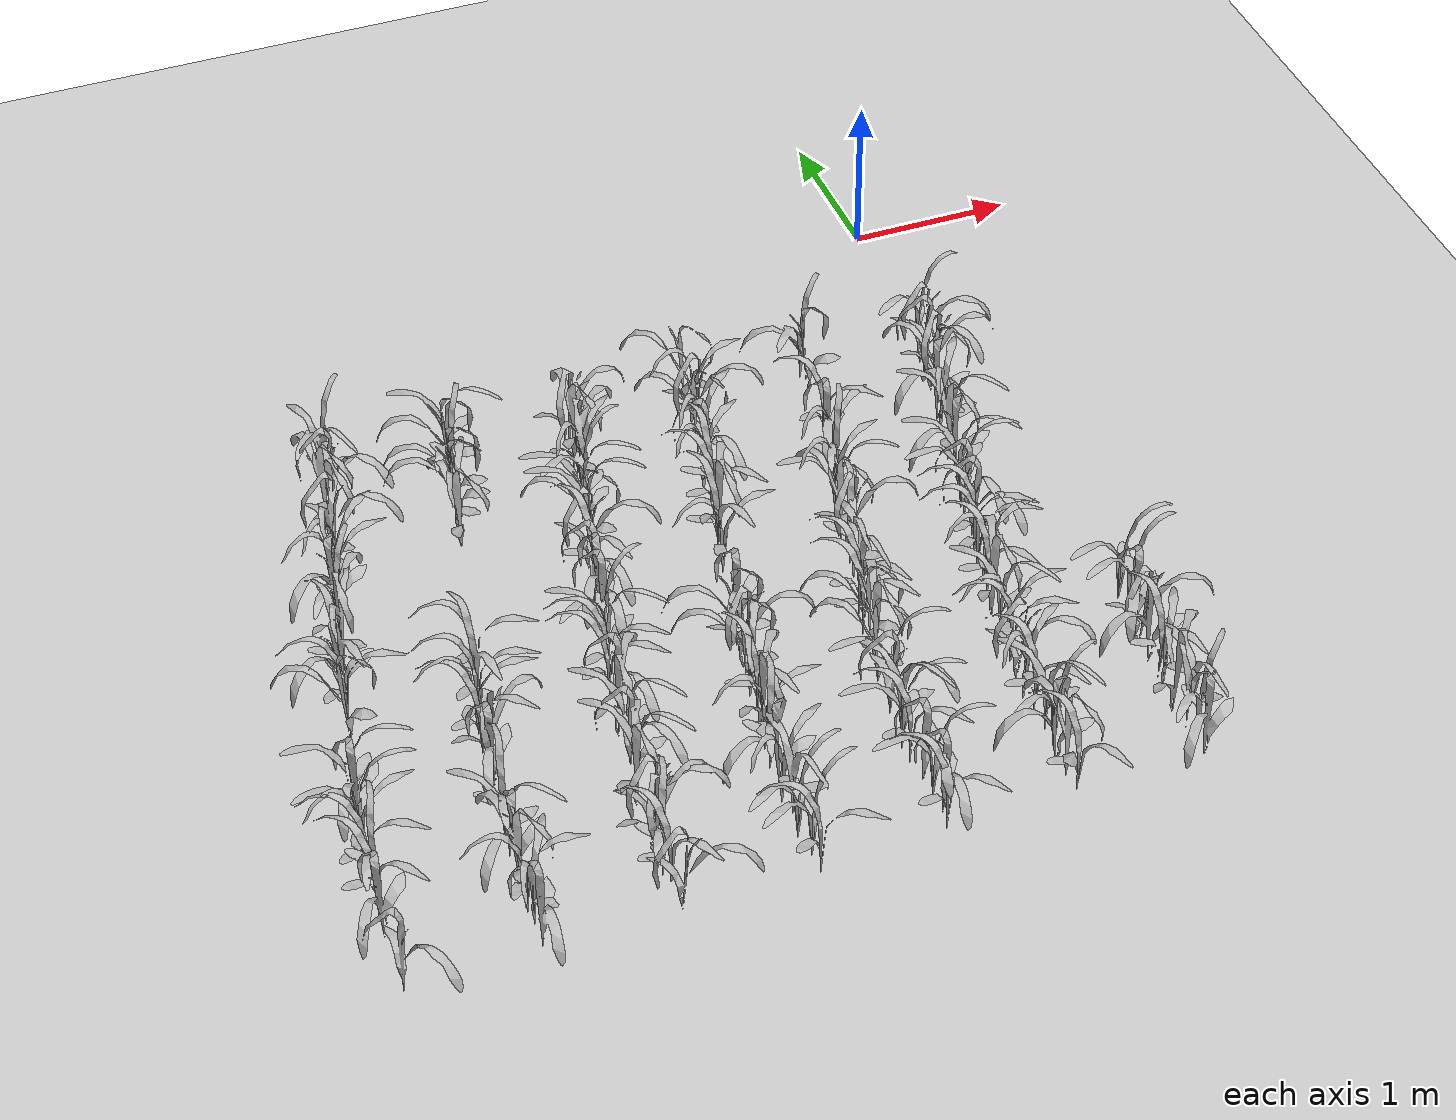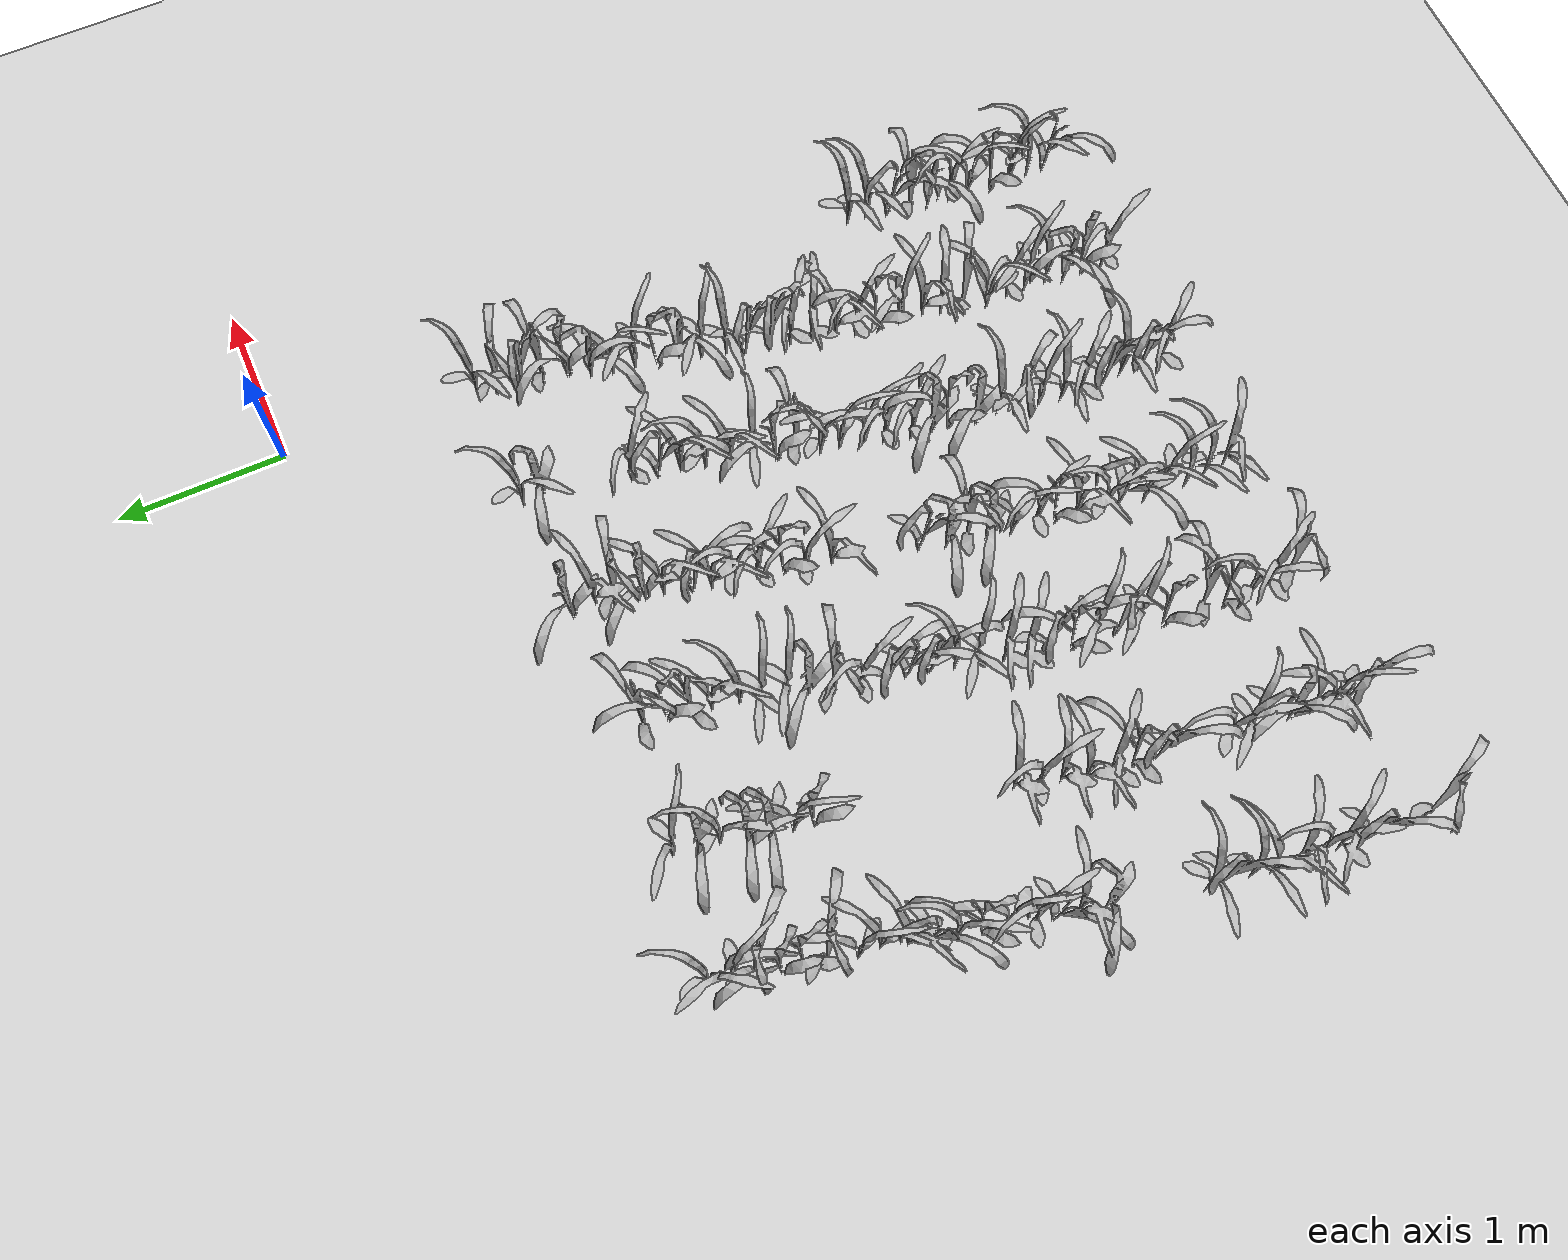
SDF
<sdf version="1.7">
 <world name="default">
  <model name="ground_plane">
   <static>1</static>
   <link name="link">
    <collision name="collision">
     <geometry><plane><normal>0 0 1</normal><size>100 100</size></plane></geometry>
     <surface>
      <contact><collide_bitmask>65535</collide_bitmask></contact>
      <friction><ode><mu>100</mu><mu2>50</mu2></ode></friction>
     </surface>
    </collision>
    <visual name="visual">
     <cast_shadows>0</cast_shadows>
     <geometry><plane><normal>0 0 1</normal><size>100 100</size></plane></geometry>
     <material>
      <script><uri>file://media/materials/scripts/gazebo.material</uri><name>Gazebo/Grey</name></script>
     </material>
    </visual>
   </link>
  </model>
  <include>
   <uri>model://maize_01</uri>
   <pose>-4.531793995716456 -4.960580733342986 0.0 0.0 0.0 6.017079525432541</pose>
   <name>maize_01_0000</name>
   <static>true</static>
  </include>
  <include>
   <uri>model://maize_01</uri>
   <pose>-4.518441697186756 -4.574618727382035 0.0 0.0 0.0 5.008392519156939</pose>
   <name>maize_01_0001</name>
   <static>true</static>
  </include>
  <include>
   <uri>model://maize_02</uri>
   <pose>-4.501515045776659 -4.4218119579918165 0.0 0.0 0.0 1.2706983333915631</pose>
   <name>maize_02_0002</name>
   <static>true</static>
  </include>
  <include>
   <uri>model://maize_02</uri>
   <pose>-4.4835355722632295 -4.318268872677092 0.0 0.0 0.0 0.28513697546617056</pose>
   <name>maize_02_0003</name>
   <static>true</static>
  </include>
  <include>
   <uri>model://maize_02</uri>
   <pose>-4.4767248057997175 -4.185289577142793 0.0 0.0 0.0 1.6550879756437733</pose>
   <name>maize_02_0004</name>
   <static>true</static>
  </include>
  <include>
   <uri>model://maize_02</uri>
   <pose>-4.467847946746443 -4.0361677564991325 0.0 0.0 0.0 2.4853662569753436</pose>
   <name>maize_02_0005</name>
   <static>true</static>
  </include>
  <include>
   <uri>model://maize_02</uri>
   <pose>-4.441587306716064 -3.923699065934835 0.0 0.0 0.0 5.3770612304519965</pose>
   <name>maize_02_0006</name>
   <static>true</static>
  </include>
  <include>
   <uri>model://maize_01</uri>
   <pose>-4.41216207996265 -3.7634851978451587 0.0 0.0 0.0 5.079242327765511</pose>
   <name>maize_01_0007</name>
   <static>true</static>
  </include>
  <include>
   <uri>model://maize_02</uri>
   <pose>-4.413155404463141 -3.6672389196487107 0.0 0.0 0.0 5.065859083379614</pose>
   <name>maize_02_0008</name>
   <static>true</static>
  </include>
  <include>
   <uri>model://maize_01</uri>
   <pose>-4.281048067476992 -3.1441274241118373 0.0 0.0 0.0 3.376886298033417</pose>
   <name>maize_01_0009</name>
   <static>true</static>
  </include>
  <include>
   <uri>model://maize_02</uri>
   <pose>-4.251953902432818 -2.997790140455556 0.0 0.0 0.0 1.9050896812295395</pose>
   <name>maize_02_0010</name>
   <static>true</static>
  </include>
  <include>
   <uri>model://maize_01</uri>
   <pose>-4.233322325234337 -2.8541123914116255 0.0 0.0 0.0 4.56311697105011</pose>
   <name>maize_01_0011</name>
   <static>true</static>
  </include>
  <include>
   <uri>model://maize_02</uri>
   <pose>-4.208326269413973 -2.755072963418996 0.0 0.0 0.0 0.7661939738170996</pose>
   <name>maize_02_0012</name>
   <static>true</static>
  </include>
  <include>
   <uri>model://maize_02</uri>
   <pose>-4.1609833953127815 -2.6213107413306163 0.0 0.0 0.0 3.3689922893979243</pose>
   <name>maize_02_0013</name>
   <static>true</static>
  </include>
  <include>
   <uri>model://maize_01</uri>
   <pose>-4.138726946819205 -2.4815221147651556 0.0 0.0 0.0 1.7671488061466631</pose>
   <name>maize_01_0014</name>
   <static>true</static>
  </include>
  <include>
   <uri>model://maize_02</uri>
   <pose>-4.108588939710756 -2.352714265192976 0.0 0.0 0.0 0.034130449495240904</pose>
   <name>maize_02_0015</name>
   <static>true</static>
  </include>
  <include>
   <uri>model://maize_01</uri>
   <pose>-4.076261031498544 -2.204468866811129 0.0 0.0 0.0 4.62302973290323</pose>
   <name>maize_01_0016</name>
   <static>true</static>
  </include>
  <include>
   <uri>model://maize_02</uri>
   <pose>-4.044302468263329 -2.100501791356326 0.0 0.0 0.0 2.48280238567645</pose>
   <name>maize_02_0017</name>
   <static>true</static>
  </include>
  <include>
   <uri>model://maize_02</uri>
   <pose>-3.9965690950720036 -1.9648498549731517 0.0 0.0 0.0 2.8729656630656337</pose>
   <name>maize_02_0018</name>
   <static>true</static>
  </include>
  <include>
   <uri>model://maize_02</uri>
   <pose>-3.995758704859979 -1.8356440791896802 0.0 0.0 0.0 3.3627795042210087</pose>
   <name>maize_02_0019</name>
   <static>true</static>
  </include>
  <include>
   <uri>model://maize_01</uri>
   <pose>-3.945012583920206 -1.6819992102652874 0.0 0.0 0.0 0.2578589494956035</pose>
   <name>maize_01_0020</name>
   <static>true</static>
  </include>
  <include>
   <uri>model://maize_01</uri>
   <pose>-3.9135271187651903 -1.5632728652873535 0.0 0.0 0.0 2.131344666537951</pose>
   <name>maize_01_0021</name>
   <static>true</static>
  </include>
  <include>
   <uri>model://maize_01</uri>
   <pose>-3.9183005057646216 -1.4413226075912162 0.0 0.0 0.0 2.508691015644085</pose>
   <name>maize_01_0022</name>
   <static>true</static>
  </include>
  <include>
   <uri>model://maize_01</uri>
   <pose>-3.8569263987941502 -1.30801664512541 0.0 0.0 0.0 0.023972559312064757</pose>
   <name>maize_01_0023</name>
   <static>true</static>
  </include>
  <include>
   <uri>model://maize_02</uri>
   <pose>-3.8522621875435283 -1.1771247979992754 0.0 0.0 0.0 4.061355894285259</pose>
   <name>maize_02_0024</name>
   <static>true</static>
  </include>
  <include>
   <uri>model://maize_02</uri>
   <pose>-3.8199519806940794 -1.060419732433384 0.0 0.0 0.0 6.225746781935045</pose>
   <name>maize_02_0025</name>
   <static>true</static>
  </include>
  <include>
   <uri>model://maize_01</uri>
   <pose>-3.7795455682243455 -4.922314661148935 0.0 0.0 0.0 5.438872316752531</pose>
   <name>maize_01_0057</name>
   <static>true</static>
  </include>
  <include>
   <uri>model://maize_02</uri>
   <pose>-3.7716718400184375 -4.7819325548573755 0.0 0.0 0.0 3.2703728893638973</pose>
   <name>maize_02_0058</name>
   <static>true</static>
  </include>
  <include>
   <uri>model://maize_02</uri>
   <pose>-3.77630619103592 -4.675013799444598 0.0 0.0 0.0 2.1384023684539044</pose>
   <name>maize_02_0059</name>
   <static>true</static>
  </include>
  <include>
   <uri>model://maize_01</uri>
   <pose>-3.7582149297979504 -4.542071200567914 0.0 0.0 0.0 2.587067493809426</pose>
   <name>maize_01_0060</name>
   <static>true</static>
  </include>
  <include>
   <uri>model://maize_01</uri>
   <pose>-3.7427997404554616 -4.4185379486890355 0.0 0.0 0.0 4.785804181756647</pose>
   <name>maize_01_0061</name>
   <static>true</static>
  </include>
  <include>
   <uri>model://maize_02</uri>
   <pose>-3.7406134799310924 -4.266875657594646 0.0 0.0 0.0 4.483179512336549</pose>
   <name>maize_02_0062</name>
   <static>true</static>
  </include>
  <include>
   <uri>model://maize_02</uri>
   <pose>-3.731496952124483 -4.162675607160168 0.0 0.0 0.0 0.38943193695219064</pose>
   <name>maize_02_0063</name>
   <static>true</static>
  </include>
  <include>
   <uri>model://maize_01</uri>
   <pose>-3.6669394698670232 -3.7707127279646127 0.0 0.0 0.0 5.171469465946822</pose>
   <name>maize_01_0064</name>
   <static>true</static>
  </include>
  <include>
   <uri>model://maize_01</uri>
   <pose>-3.6432589711532026 -3.640257710150719 0.0 0.0 0.0 1.2732020011907326</pose>
   <name>maize_01_0065</name>
   <static>true</static>
  </include>
  <include>
   <uri>model://maize_02</uri>
   <pose>-3.6433443808097388 -3.503248517189463 0.0 0.0 0.0 1.453069531675977</pose>
   <name>maize_02_0066</name>
   <static>true</static>
  </include>
  <include>
   <uri>model://maize_02</uri>
   <pose>-3.619798862201274 -3.36517529117578 0.0 0.0 0.0 2.1695555242958826</pose>
   <name>maize_02_0067</name>
   <static>true</static>
  </include>
  <include>
   <uri>model://maize_02</uri>
   <pose>-3.5763140195222416 -3.2347646212342407 0.0 0.0 0.0 1.884515279011557</pose>
   <name>maize_02_0068</name>
   <static>true</static>
  </include>
  <include>
   <uri>model://maize_02</uri>
   <pose>-3.5480268986596646 -3.1125495934150504 0.0 0.0 0.0 0.7487759984646853</pose>
   <name>maize_02_0069</name>
   <static>true</static>
  </include>
  <include>
   <uri>model://maize_02</uri>
   <pose>-3.507073669084765 -2.986083083736267 0.0 0.0 0.0 1.862658095960679</pose>
   <name>maize_02_0070</name>
   <static>true</static>
  </include>
  <include>
   <uri>model://maize_01</uri>
   <pose>-3.2541587880809524 -1.919487048290507 0.0 0.0 0.0 2.488051272879369</pose>
   <name>maize_01_0071</name>
   <static>true</static>
  </include>
  <include>
   <uri>model://maize_02</uri>
   <pose>-3.240801681940603 -1.8023044127261663 0.0 0.0 0.0 3.3511493863740602</pose>
   <name>maize_02_0072</name>
   <static>true</static>
  </include>
  <include>
   <uri>model://maize_01</uri>
   <pose>-3.1953429535672897 -1.6747070124864745 0.0 0.0 0.0 3.649405086530162</pose>
   <name>maize_01_0073</name>
   <static>true</static>
  </include>
  <include>
   <uri>model://maize_01</uri>
   <pose>-3.1728650134911898 -1.5635176371581856 0.0 0.0 0.0 3.614012483821144</pose>
   <name>maize_01_0074</name>
   <static>true</static>
  </include>
  <include>
   <uri>model://maize_02</uri>
   <pose>-3.14796099966957 -1.4147807558307919 0.0 0.0 0.0 0.1067105285816496</pose>
   <name>maize_02_0075</name>
   <static>true</static>
  </include>
  <include>
   <uri>model://maize_01</uri>
   <pose>-3.1302348466367746 -1.3075582722095913 0.0 0.0 0.0 3.6089998760249875</pose>
   <name>maize_01_0076</name>
   <static>true</static>
  </include>
  <include>
   <uri>model://maize_02</uri>
   <pose>-3.1041708037849056 -1.1598075087787956 0.0 0.0 0.0 4.699811718796191</pose>
   <name>maize_02_0077</name>
   <static>true</static>
  </include>
  <include>
   <uri>model://maize_01</uri>
   <pose>-3.02345532126991 -4.949562740823207 0.0 0.0 0.0 0.37822209443056976</pose>
   <name>maize_01_0122</name>
   <static>true</static>
  </include>
  <include>
   <uri>model://maize_02</uri>
   <pose>-3.0313590200305316 -4.7986498900723955 0.0 0.0 0.0 1.135072426409803</pose>
   <name>maize_02_0123</name>
   <static>true</static>
  </include>
  <include>
   <uri>model://maize_02</uri>
   <pose>-3.0377385649364244 -4.685326064115895 0.0 0.0 0.0 0.21873973883025816</pose>
   <name>maize_02_0124</name>
   <static>true</static>
  </include>
  <include>
   <uri>model://maize_01</uri>
   <pose>-3.0262421200176766 -4.539438680768461 0.0 0.0 0.0 1.2068185780683383</pose>
   <name>maize_01_0125</name>
   <static>true</static>
  </include>
  <include>
   <uri>model://maize_01</uri>
   <pose>-2.99724872679413 -4.413896120296251 0.0 0.0 0.0 0.5633353865919583</pose>
   <name>maize_01_0126</name>
   <static>true</static>
  </include>
  <include>
   <uri>model://maize_01</uri>
   <pose>-2.993266953020701 -4.172579426217554 0.0 0.0 0.0 2.0361742187306238</pose>
   <name>maize_01_0127</name>
   <static>true</static>
  </include>
  <include>
   <uri>model://maize_02</uri>
   <pose>-2.9425575832540307 -4.025603841520514 0.0 0.0 0.0 4.46596551739342</pose>
   <name>maize_02_0128</name>
   <static>true</static>
  </include>
  <include>
   <uri>model://maize_01</uri>
   <pose>-2.9408057750248244 -3.907110320965573 0.0 0.0 0.0 5.963680218913217</pose>
   <name>maize_01_0129</name>
   <static>true</static>
  </include>
  <include>
   <uri>model://maize_02</uri>
   <pose>-2.9048750133564423 -3.776041829065486 0.0 0.0 0.0 4.496367171834141</pose>
   <name>maize_02_0130</name>
   <static>true</static>
  </include>
  <include>
   <uri>model://maize_01</uri>
   <pose>-2.9097627133250907 -3.6447923222866385 0.0 0.0 0.0 1.8148153439683279</pose>
   <name>maize_01_0131</name>
   <static>true</static>
  </include>
  <include>
   <uri>model://maize_01</uri>
   <pose>-2.8679081546516447 -3.503425825155785 0.0 0.0 0.0 5.702343576509076</pose>
   <name>maize_01_0132</name>
   <static>true</static>
  </include>
  <include>
   <uri>model://maize_02</uri>
   <pose>-2.868137083544771 -3.3772686145292754 0.0 0.0 0.0 1.5379749380637495</pose>
   <name>maize_02_0133</name>
   <static>true</static>
  </include>
  <include>
   <uri>model://maize_02</uri>
   <pose>-2.8290729019350245 -3.2633668686258193 0.0 0.0 0.0 1.6015216680351987</pose>
   <name>maize_02_0134</name>
   <static>true</static>
  </include>
  <include>
   <uri>model://maize_02</uri>
   <pose>-2.783125485275828 -3.1058415603687624 0.0 0.0 0.0 4.661305088937239</pose>
   <name>maize_02_0135</name>
   <static>true</static>
  </include>
  <include>
   <uri>model://maize_02</uri>
   <pose>-2.757769121976393 -2.9909676815016564 0.0 0.0 0.0 5.826121727312427</pose>
   <name>maize_02_0136</name>
   <static>true</static>
  </include>
  <include>
   <uri>model://maize_01</uri>
   <pose>-2.7255291201039378 -2.8575797721366913 0.0 0.0 0.0 5.460087597517331</pose>
   <name>maize_01_0137</name>
   <static>true</static>
  </include>
  <include>
   <uri>model://maize_01</uri>
   <pose>-2.698220597527192 -2.726896280895584 0.0 0.0 0.0 5.013066241411847</pose>
   <name>maize_01_0138</name>
   <static>true</static>
  </include>
  <include>
   <uri>model://maize_01</uri>
   <pose>-2.69093820344446 -2.6100295954037396 0.0 0.0 0.0 5.713246369508774</pose>
   <name>maize_01_0139</name>
   <static>true</static>
  </include>
  <include>
   <uri>model://maize_02</uri>
   <pose>-2.6462003810286996 -2.4793777951723586 0.0 0.0 0.0 0.9569976113280314</pose>
   <name>maize_02_0140</name>
   <static>true</static>
  </include>
  <include>
   <uri>model://maize_01</uri>
   <pose>-2.6245127100794723 -2.3236984824574063 0.0 0.0 0.0 0.5068375478563034</pose>
   <name>maize_01_0141</name>
   <static>true</static>
  </include>
  <include>
   <uri>model://maize_01</uri>
   <pose>-2.564122031946985 -2.196381292656696 0.0 0.0 0.0 3.2488782327561125</pose>
   <name>maize_01_0142</name>
   <static>true</static>
  </include>
  <include>
   <uri>model://maize_02</uri>
   <pose>-2.5456741835578867 -2.0723964532204002 0.0 0.0 0.0 4.840865437532832</pose>
   <name>maize_02_0143</name>
   <static>true</static>
  </include>
  <include>
   <uri>model://maize_02</uri>
   <pose>-2.524664883531338 -1.9305965650492107 0.0 0.0 0.0 4.88558408087691</pose>
   <name>maize_02_0144</name>
   <static>true</static>
  </include>
  <include>
   <uri>model://maize_02</uri>
   <pose>-2.4756513471061417 -1.8189039674893783 0.0 0.0 0.0 5.813697453062148</pose>
   <name>maize_02_0145</name>
   <static>true</static>
  </include>
  <include>
   <uri>model://maize_02</uri>
   <pose>-2.44071055812896 -1.6701967592234526 0.0 0.0 0.0 2.951956325156557</pose>
   <name>maize_02_0146</name>
   <static>true</static>
  </include>
  <include>
   <uri>model://maize_01</uri>
   <pose>-2.4319663125669715 -1.5611306149595767 0.0 0.0 0.0 1.5189266148616334</pose>
   <name>maize_01_0147</name>
   <static>true</static>
  </include>
  <include>
   <uri>model://maize_01</uri>
   <pose>-2.3955022997298063 -1.4285221699449375 0.0 0.0 0.0 2.3294333576917583</pose>
   <name>maize_01_0148</name>
   <static>true</static>
  </include>
  <include>
   <uri>model://maize_01</uri>
   <pose>-2.3933184377047287 -1.2924929329433776 0.0 0.0 0.0 1.0877852392430598</pose>
   <name>maize_01_0149</name>
   <static>true</static>
  </include>
  <include>
   <uri>model://maize_02</uri>
   <pose>-2.2589038506024255 -4.9589416815988665 0.0 0.0 0.0 1.6282102409626868</pose>
   <name>maize_02_0187</name>
   <static>true</static>
  </include>
  <include>
   <uri>model://maize_02</uri>
   <pose>-2.259685641257191 -4.836628538628313 0.0 0.0 0.0 5.708401119117299</pose>
   <name>maize_02_0188</name>
   <static>true</static>
  </include>
  <include>
   <uri>model://maize_02</uri>
   <pose>-2.283354387133886 -4.693437918642681 0.0 0.0 0.0 5.727289370827948</pose>
   <name>maize_02_0189</name>
   <static>true</static>
  </include>
  <include>
   <uri>model://maize_02</uri>
   <pose>-2.2543360218364503 -4.55497617370198 0.0 0.0 0.0 3.8116275933162505</pose>
   <name>maize_02_0190</name>
   <static>true</static>
  </include>
  <include>
   <uri>model://maize_02</uri>
   <pose>-2.2696532607791755 -4.435422792358771 0.0 0.0 0.0 2.7799727549709297</pose>
   <name>maize_02_0191</name>
   <static>true</static>
  </include>
  <include>
   <uri>model://maize_01</uri>
   <pose>-2.2328798902662865 -4.295791735184098 0.0 0.0 0.0 4.335456376625401</pose>
   <name>maize_01_0192</name>
   <static>true</static>
  </include>
  <include>
   <uri>model://maize_02</uri>
   <pose>-2.241963882290444 -4.186160265419187 0.0 0.0 0.0 0.2611230833172006</pose>
   <name>maize_02_0193</name>
   <static>true</static>
  </include>
  <include>
   <uri>model://maize_02</uri>
   <pose>-2.208609973109888 -4.027928863684521 0.0 0.0 0.0 2.3633521226229104</pose>
   <name>maize_02_0194</name>
   <static>true</static>
  </include>
  <include>
   <uri>model://maize_01</uri>
   <pose>-2.1787469665882013 -3.9077960470310242 0.0 0.0 0.0 1.8318346969498072</pose>
   <name>maize_01_0195</name>
   <static>true</static>
  </include>
  <include>
   <uri>model://maize_02</uri>
   <pose>-2.162687255786043 -3.7915860823306455 0.0 0.0 0.0 0.9251958715285307</pose>
   <name>maize_02_0196</name>
   <static>true</static>
  </include>
  <include>
   <uri>model://maize_02</uri>
   <pose>-2.146597830502508 -3.647526324552913 0.0 0.0 0.0 3.3297858805435263</pose>
   <name>maize_02_0197</name>
   <static>true</static>
  </include>
  <include>
   <uri>model://maize_01</uri>
   <pose>-2.1126933099624714 -3.503134839994966 0.0 0.0 0.0 3.3950527130001382</pose>
   <name>maize_01_0198</name>
   <static>true</static>
  </include>
  <include>
   <uri>model://maize_01</uri>
   <pose>-2.089530501786094 -3.397797068605359 0.0 0.0 0.0 0.7341537573607169</pose>
   <name>maize_01_0199</name>
   <static>true</static>
  </include>
  <include>
   <uri>model://maize_01</uri>
   <pose>-2.075417656978612 -3.26610016388492 0.0 0.0 0.0 3.583455598809636</pose>
   <name>maize_01_0200</name>
   <static>true</static>
  </include>
  <include>
   <uri>model://maize_01</uri>
   <pose>-2.024816352671715 -3.123605556172162 0.0 0.0 0.0 5.066326323913614</pose>
   <name>maize_01_0201</name>
   <static>true</static>
  </include>
  <include>
   <uri>model://maize_02</uri>
   <pose>-1.9201767589259984 -2.6275363301903534 0.0 0.0 0.0 2.3805959613966228</pose>
   <name>maize_02_0202</name>
   <static>true</static>
  </include>
  <include>
   <uri>model://maize_02</uri>
   <pose>-1.8937963671412599 -2.4738327160298716 0.0 0.0 0.0 0.8883637329055545</pose>
   <name>maize_02_0203</name>
   <static>true</static>
  </include>
  <include>
   <uri>model://maize_01</uri>
   <pose>-1.8441215969961415 -2.364290353916489 0.0 0.0 0.0 1.9594583746469776</pose>
   <name>maize_01_0204</name>
   <static>true</static>
  </include>
  <include>
   <uri>model://maize_02</uri>
   <pose>-1.8174925385181082 -2.2144207630383397 0.0 0.0 0.0 1.312163747218715</pose>
   <name>maize_02_0205</name>
   <static>true</static>
  </include>
  <include>
   <uri>model://maize_02</uri>
   <pose>-1.7939189585349966 -2.089269797986811 0.0 0.0 0.0 0.6798505095562362</pose>
   <name>maize_02_0206</name>
   <static>true</static>
  </include>
  <include>
   <uri>model://maize_02</uri>
   <pose>-1.782421675305881 -1.9504186403023607 0.0 0.0 0.0 2.8385073660870335</pose>
   <name>maize_02_0207</name>
   <static>true</static>
  </include>
  <include>
   <uri>model://maize_01</uri>
   <pose>-1.7463066518732802 -1.8506178325432237 0.0 0.0 0.0 5.74812037609738</pose>
   <name>maize_01_0208</name>
   <static>true</static>
  </include>
  <include>
   <uri>model://maize_02</uri>
   <pose>-1.6954914688041034 -1.6912334134657023 0.0 0.0 0.0 2.9279084828131077</pose>
   <name>maize_02_0209</name>
   <static>true</static>
  </include>
  <include>
   <uri>model://maize_01</uri>
   <pose>-1.6851858613017197 -1.5865099137729686 0.0 0.0 0.0 3.0735961681259045</pose>
   <name>maize_01_0210</name>
   <static>true</static>
  </include>
  <include>
   <uri>model://maize_01</uri>
   <pose>-1.6448024147293097 -1.4265756647565568 0.0 0.0 0.0 0.5867640772686147</pose>
   <name>maize_01_0211</name>
   <static>true</static>
  </include>
  <include>
   <uri>model://maize_02</uri>
   <pose>-1.608051435393446 -1.3184258219437266 0.0 0.0 0.0 2.47761078306881</pose>
   <name>maize_02_0212</name>
   <static>true</static>
  </include>
  <include>
   <uri>model://maize_01</uri>
   <pose>-1.616060810189192 -1.174066773106856 0.0 0.0 0.0 3.145434899208196</pose>
   <name>maize_01_0213</name>
   <static>true</static>
  </include>
  <include>
   <uri>model://maize_02</uri>
   <pose>-1.527716630719705 -4.9236369156842406 0.0 0.0 0.0 1.325937059402928</pose>
   <name>maize_02_0242</name>
   <static>true</static>
  </include>
  <include>
   <uri>model://maize_01</uri>
   <pose>-1.504408871583639 -4.8095782940386975 0.0 0.0 0.0 5.389700622447113</pose>
   <name>maize_01_0243</name>
   <static>true</static>
  </include>
  <include>
   <uri>model://maize_02</uri>
   <pose>-1.5009548565114577 -4.676553230385797 0.0 0.0 0.0 5.28013834642822</pose>
   <name>maize_02_0244</name>
   <static>true</static>
  </include>
  <include>
   <uri>model://maize_01</uri>
   <pose>-1.5095581319992262 -4.560746675991121 0.0 0.0 0.0 5.412334594631463</pose>
   <name>maize_01_0245</name>
   <static>true</static>
  </include>
  <include>
   <uri>model://maize_02</uri>
   <pose>-1.518106078468066 -4.4029490469004 0.0 0.0 0.0 1.361388562792756</pose>
   <name>maize_02_0246</name>
   <static>true</static>
  </include>
  <include>
   <uri>model://maize_02</uri>
   <pose>-1.5114948447603236 -4.2791465241129885 0.0 0.0 0.0 5.151900308669884</pose>
   <name>maize_02_0247</name>
   <static>true</static>
  </include>
  <include>
   <uri>model://maize_02</uri>
   <pose>-1.4695387298303395 -4.165026932111871 0.0 0.0 0.0 4.1881331196619405</pose>
   <name>maize_02_0248</name>
   <static>true</static>
  </include>
  <include>
   <uri>model://maize_01</uri>
   <pose>-1.4716357374085323 -4.01791880987611 0.0 0.0 0.0 6.1311805554636845</pose>
   <name>maize_01_0249</name>
   <static>true</static>
  </include>
  <include>
   <uri>model://maize_02</uri>
   <pose>-1.4310749383801789 -3.9090489844834226 0.0 0.0 0.0 5.243753155613623</pose>
   <name>maize_02_0250</name>
   <static>true</static>
  </include>
  <include>
   <uri>model://maize_01</uri>
   <pose>-1.4400182997166924 -3.7656555554565396 0.0 0.0 0.0 3.064454019253876</pose>
   <name>maize_01_0251</name>
   <static>true</static>
  </include>
  <include>
   <uri>model://maize_01</uri>
   <pose>-1.3881719387618847 -3.613098014126203 0.0 0.0 0.0 2.0993158867779784</pose>
   <name>maize_01_0252</name>
   <static>true</static>
  </include>
  <include>
   <uri>model://maize_01</uri>
   <pose>-1.376007791649027 -3.513367841399838 0.0 0.0 0.0 3.2099666774674707</pose>
   <name>maize_01_0253</name>
   <static>true</static>
  </include>
  <include>
   <uri>model://maize_02</uri>
   <pose>-1.368810227725241 -3.383635621872622 0.0 0.0 0.0 1.2625026787459732</pose>
   <name>maize_02_0254</name>
   <static>true</static>
  </include>
  <include>
   <uri>model://maize_02</uri>
   <pose>-1.329560035766398 -3.2287570942700667 0.0 0.0 0.0 1.1538486979794393</pose>
   <name>maize_02_0255</name>
   <static>true</static>
  </include>
  <include>
   <uri>model://maize_02</uri>
   <pose>-1.2779704135955094 -3.1288909173136754 0.0 0.0 0.0 3.727105450906088</pose>
   <name>maize_02_0256</name>
   <static>true</static>
  </include>
  <include>
   <uri>model://maize_02</uri>
   <pose>-1.2585596987397845 -2.9777759801202754 0.0 0.0 0.0 3.5157371818121237</pose>
   <name>maize_02_0257</name>
   <static>true</static>
  </include>
  <include>
   <uri>model://maize_02</uri>
   <pose>-1.238539060105779 -2.864195076581025 0.0 0.0 0.0 0.3067127925664099</pose>
   <name>maize_02_0258</name>
   <static>true</static>
  </include>
  <include>
   <uri>model://maize_01</uri>
   <pose>-1.1858586139990506 -2.737401681715219 0.0 0.0 0.0 0.7726792431943744</pose>
   <name>maize_01_0259</name>
   <static>true</static>
  </include>
  <include>
   <uri>model://maize_01</uri>
   <pose>-1.1834817697410072 -2.6092725100440144 0.0 0.0 0.0 2.6416119833339544</pose>
   <name>maize_01_0260</name>
   <static>true</static>
  </include>
  <include>
   <uri>model://maize_02</uri>
   <pose>-1.1504890368796754 -2.4737956871463256 0.0 0.0 0.0 4.999714059566802</pose>
   <name>maize_02_0261</name>
   <static>true</static>
  </include>
  <include>
   <uri>model://maize_02</uri>
   <pose>-1.118173782069089 -2.350945446976399 0.0 0.0 0.0 2.6291708029346483</pose>
   <name>maize_02_0262</name>
   <static>true</static>
  </include>
  <include>
   <uri>model://maize_02</uri>
   <pose>-1.0642043864763513 -2.213515926351582 0.0 0.0 0.0 0.15303929488693507</pose>
   <name>maize_02_0263</name>
   <static>true</static>
  </include>
  <include>
   <uri>model://maize_02</uri>
   <pose>-1.035464305697121 -2.0734879912793955 0.0 0.0 0.0 2.757476746130711</pose>
   <name>maize_02_0264</name>
   <static>true</static>
  </include>
  <include>
   <uri>model://maize_01</uri>
   <pose>-1.0099870706887322 -1.941609765534306 0.0 0.0 0.0 5.138263251874368</pose>
   <name>maize_01_0265</name>
   <static>true</static>
  </include>
  <include>
   <uri>model://maize_02</uri>
   <pose>-0.9639349379688723 -1.7950997700302598 0.0 0.0 0.0 1.4923887238590297</pose>
   <name>maize_02_0266</name>
   <static>true</static>
  </include>
  <include>
   <uri>model://maize_01</uri>
   <pose>-0.8640456584617721 -1.2783194635015447 0.0 0.0 0.0 3.6957008226574164</pose>
   <name>maize_01_0267</name>
   <static>true</static>
  </include>
  <include>
   <uri>model://maize_02</uri>
   <pose>-0.8639894049905211 -1.1645494503321545 0.0 0.0 0.0 6.121331627383098</pose>
   <name>maize_02_0268</name>
   <static>true</static>
  </include>
  <include>
   <uri>model://maize_02</uri>
   <pose>-0.7796692035975744 -4.937693837320563 0.0 0.0 0.0 1.0301888263821286</pose>
   <name>maize_02_0312</name>
   <static>true</static>
  </include>
  <include>
   <uri>model://maize_01</uri>
   <pose>-0.7758613939374043 -4.801353425582116 0.0 0.0 0.0 2.510808118734324</pose>
   <name>maize_01_0313</name>
   <static>true</static>
  </include>
  <include>
   <uri>model://maize_01</uri>
   <pose>-0.7827862108247085 -4.669908767820071 0.0 0.0 0.0 4.111427534351951</pose>
   <name>maize_01_0314</name>
   <static>true</static>
  </include>
  <include>
   <uri>model://maize_02</uri>
   <pose>-0.7481072916427677 -4.569000252528575 0.0 0.0 0.0 5.74398053248254</pose>
   <name>maize_02_0315</name>
   <static>true</static>
  </include>
  <include>
   <uri>model://maize_02</uri>
   <pose>-0.7346219526861891 -4.437861164504943 0.0 0.0 0.0 4.230434627966377</pose>
   <name>maize_02_0316</name>
   <static>true</static>
  </include>
  <include>
   <uri>model://maize_02</uri>
   <pose>-0.7456707449604635 -4.314172055193081 0.0 0.0 0.0 1.1093810301454667</pose>
   <name>maize_02_0317</name>
   <static>true</static>
  </include>
  <include>
   <uri>model://maize_02</uri>
   <pose>-0.7463567931088465 -4.183092721787056 0.0 0.0 0.0 2.820625293022251</pose>
   <name>maize_02_0318</name>
   <static>true</static>
  </include>
  <include>
   <uri>model://maize_01</uri>
   <pose>-0.7177107652683329 -4.028727047064917 0.0 0.0 0.0 0.3231405106800599</pose>
   <name>maize_01_0319</name>
   <static>true</static>
  </include>
  <include>
   <uri>model://maize_02</uri>
   <pose>-0.695055047053739 -3.8972700637545086 0.0 0.0 0.0 1.79942059170016</pose>
   <name>maize_02_0320</name>
   <static>true</static>
  </include>
  <include>
   <uri>model://maize_02</uri>
   <pose>-0.666353910339886 -3.7885319289962776 0.0 0.0 0.0 2.297978614574731</pose>
   <name>maize_02_0321</name>
   <static>true</static>
  </include>
  <include>
   <uri>model://maize_02</uri>
   <pose>-0.649966527492661 -3.6466638616403153 0.0 0.0 0.0 4.349168135405179</pose>
   <name>maize_02_0322</name>
   <static>true</static>
  </include>
  <include>
   <uri>model://maize_01</uri>
   <pose>-0.6331293058891684 -3.5093890869371633 0.0 0.0 0.0 2.0521665820413872</pose>
   <name>maize_01_0323</name>
   <static>true</static>
  </include>
  <include>
   <uri>model://maize_02</uri>
   <pose>-0.6082403907538295 -3.3777026489478463 0.0 0.0 0.0 1.131048096803727</pose>
   <name>maize_02_0324</name>
   <static>true</static>
  </include>
  <include>
   <uri>model://maize_02</uri>
   <pose>-0.5771372785667749 -3.2641252432981234 0.0 0.0 0.0 2.485059449689739</pose>
   <name>maize_02_0325</name>
   <static>true</static>
  </include>
  <include>
   <uri>model://maize_02</uri>
   <pose>-0.5527947024366763 -3.118198754035611 0.0 0.0 0.0 1.7893869471251092</pose>
   <name>maize_02_0326</name>
   <static>true</static>
  </include>
  <include>
   <uri>model://maize_02</uri>
   <pose>-0.515387997439625 -2.995141916878562 0.0 0.0 0.0 1.5720865941570061</pose>
   <name>maize_02_0327</name>
   <static>true</static>
  </include>
  <include>
   <uri>model://maize_01</uri>
   <pose>-0.48116394566497017 -2.8753146362622832 0.0 0.0 0.0 5.856441965081333</pose>
   <name>maize_01_0328</name>
   <static>true</static>
  </include>
  <include>
   <uri>model://maize_01</uri>
   <pose>-0.46500111457937116 -2.7219870579311802 0.0 0.0 0.0 5.66270299037757</pose>
   <name>maize_01_0329</name>
   <static>true</static>
  </include>
  <include>
   <uri>model://maize_02</uri>
   <pose>-0.4326120953287183 -2.611740357590339 0.0 0.0 0.0 5.243319533428979</pose>
   <name>maize_02_0330</name>
   <static>true</static>
  </include>
  <include>
   <uri>model://maize_02</uri>
   <pose>-0.3914760093603101 -2.4714325141130975 0.0 0.0 0.0 4.679513650905047</pose>
   <name>maize_02_0331</name>
   <static>true</static>
  </include>
  <include>
   <uri>model://maize_01</uri>
   <pose>-0.3503170154979734 -2.346765190032766 0.0 0.0 0.0 4.3614486301729904</pose>
   <name>maize_01_0332</name>
   <static>true</static>
  </include>
  <include>
   <uri>model://maize_01</uri>
   <pose>-0.338142566705612 -2.217080019837882 0.0 0.0 0.0 2.332952774385659</pose>
   <name>maize_01_0333</name>
   <static>true</static>
  </include>
  <include>
   <uri>model://maize_02</uri>
   <pose>-0.28231446357818274 -2.0899345777490694 0.0 0.0 0.0 4.504971031537055</pose>
   <name>maize_02_0334</name>
   <static>true</static>
  </include>
  <include>
   <uri>model://maize_02</uri>
   <pose>-0.2735309990355009 -1.9535130314222104 0.0 0.0 0.0 3.1718251407966456</pose>
   <name>maize_02_0335</name>
   <static>true</static>
  </include>
  <include>
   <uri>model://maize_01</uri>
   <pose>-0.24350263302307015 -1.8246228573863015 0.0 0.0 0.0 4.4339258822866325</pose>
   <name>maize_01_0336</name>
   <static>true</static>
  </include>
  <include>
   <uri>model://maize_01</uri>
   <pose>-0.18556811669829928 -1.7038020949288122 0.0 0.0 0.0 2.8771083522830065</pose>
   <name>maize_01_0337</name>
   <static>true</static>
  </include>
  <include>
   <uri>model://maize_01</uri>
   <pose>-0.1636282673528425 -1.5596682774128283 0.0 0.0 0.0 0.890807683227886</pose>
   <name>maize_01_0338</name>
   <static>true</static>
  </include>
  <include>
   <uri>model://maize_01</uri>
   <pose>-0.15249386251070648 -1.42197803409479 0.0 0.0 0.0 6.0259757179135995</pose>
   <name>maize_01_0339</name>
   <static>true</static>
  </include>
  <include>
   <uri>model://maize_01</uri>
   <pose>-0.12260630049242613 -1.2942127826141683 0.0 0.0 0.0 0.47516503046109954</pose>
   <name>maize_01_0340</name>
   <static>true</static>
  </include>
  <include>
   <uri>model://maize_02</uri>
   <pose>-0.08762090997282654 -1.1691113740587433 0.0 0.0 0.0 5.720849053432921</pose>
   <name>maize_02_0341</name>
   <static>true</static>
  </include>
  <include>
   <uri>model://maize_01</uri>
   <pose>-0.015872516969695688 -4.921500014275444 0.0 0.0 0.0 4.757424999914688</pose>
   <name>maize_01_0389</name>
   <static>true</static>
  </include>
  <include>
   <uri>model://maize_02</uri>
   <pose>-0.008913879992106771 -4.815444145338094 0.0 0.0 0.0 6.0335723018472756</pose>
   <name>maize_02_0390</name>
   <static>true</static>
  </include>
  <include>
   <uri>model://maize_02</uri>
   <pose>-0.0069423226884482705 -4.695322794452419 0.0 0.0 0.0 3.736369765993654</pose>
   <name>maize_02_0391</name>
   <static>true</static>
  </include>
  <include>
   <uri>model://maize_01</uri>
   <pose>-0.019714963599466756 -4.559204791580143 0.0 0.0 0.0 1.7043878821139447</pose>
   <name>maize_01_0392</name>
   <static>true</static>
  </include>
  <include>
   <uri>model://maize_02</uri>
   <pose>-0.007386913290571811 -4.4040369611829275 0.0 0.0 0.0 3.233136349751929</pose>
   <name>maize_02_0393</name>
   <static>true</static>
  </include>
  <include>
   <uri>model://maize_02</uri>
   <pose>0.01827402488383592 -4.2973310262553825 0.0 0.0 0.0 0.8771183081011763</pose>
   <name>maize_02_0394</name>
   <static>true</static>
  </include>
  <include>
   <uri>model://maize_01</uri>
   <pose>0.025583032245331566 -4.150438382661085 0.0 0.0 0.0 4.303197261216639</pose>
   <name>maize_01_0395</name>
   <static>true</static>
  </include>
  <include>
   <uri>model://maize_01</uri>
   <pose>0.024990744128381565 -4.033022671302226 0.0 0.0 0.0 0.6581950637506574</pose>
   <name>maize_01_0396</name>
   <static>true</static>
  </include>
  <include>
   <uri>model://maize_01</uri>
   <pose>0.05675730462746356 -3.900713060608875 0.0 0.0 0.0 4.950976764417976</pose>
   <name>maize_01_0397</name>
   <static>true</static>
  </include>
  <include>
   <uri>model://maize_02</uri>
   <pose>0.0919686898152611 -3.7634497932255804 0.0 0.0 0.0 5.6277317356589105</pose>
   <name>maize_02_0398</name>
   <static>true</static>
  </include>
  <include>
   <uri>model://maize_02</uri>
   <pose>0.09010202101781731 -3.6405940896995514 0.0 0.0 0.0 5.469617888117026</pose>
   <name>maize_02_0399</name>
   <static>true</static>
  </include>
 </world>
</sdf>
